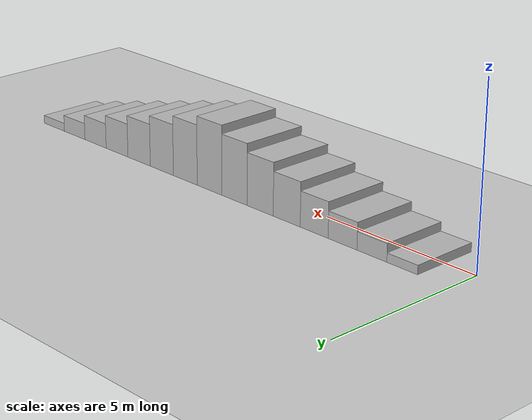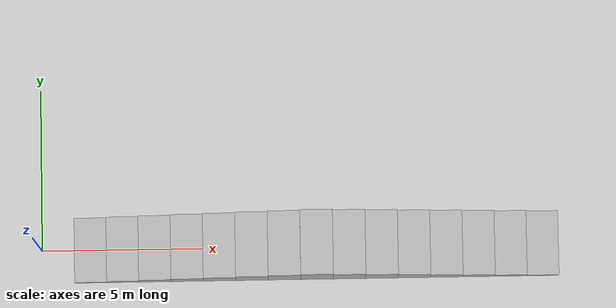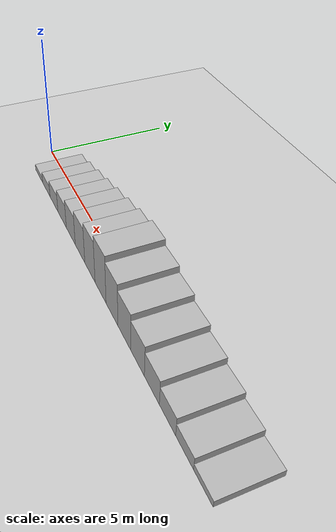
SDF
<?xml version="1.0"?>
<sdf version="1.5">
  <world name="default">
    <!--Global light source -->
    <include>
      <uri>model://sun</uri>
    </include>

    <!-- Ground plane-->
    <include>
      <uri>model://ground_plane</uri>
    </include>

  <!-- Include box 1-->
  <model name="box1">
    <pose>1.5 0 0.125 0 0 0</pose>
    <static>false</static>
    <link name="box1">
      <collision name="collision1">
        <geometry>
          <box>
            <size>1 2 0.25</size>
          </box>
        </geometry>
      </collision>
      <visual name="visual1">
        <geometry>
          <box>
            <size>1 2 0.25</size>
          </box>
        </geometry>
      </visual>
    </link>
  </model>

  <!-- Include box 2-->
  <model name="box2">
    <pose>2.5 0 0.25 0 0 0</pose>
    <static>false</static>
    <link name="box2">
      <collision name="collision2">
        <geometry>
          <box>
            <size>1 2 0.5</size>
          </box>
        </geometry>
      </collision>
      <visual name="visual2">
        <geometry>
          <box>
            <size>1 2 0.5</size>
          </box>
        </geometry>
      </visual>
    </link>
  </model>

  <!-- Include box 3-->
  <model name="box3">
    <pose>3.5 0 0.375 0 0 0</pose>
    <static>false</static>
    <link name="box3">
      <collision name="collision3">
        <geometry>
          <box>
            <size>1 2 0.75</size>
          </box>
        </geometry>
      </collision>
      <visual name="visual3">
        <geometry>
          <box>
            <size>1 2 0.75</size>
          </box>
        </geometry>
      </visual>
    </link>
  </model>

  <!-- Include box 4-->
  <model name="box4">
    <pose>4.5 0 0.5 0 0 0</pose>
    <static>false</static>
    <link name="box4">
      <collision name="collision4">
        <geometry>
          <box>
            <size>1 2 1</size>
          </box>
        </geometry>
      </collision>
      <visual name="visual4">
        <geometry>
          <box>
            <size>1 2 1</size>
          </box>
        </geometry>
      </visual>
    </link>
  </model>

  <!-- Include box 5-->
  <model name="box5">
    <pose>5.5 0 0.625 0 0 0</pose>
    <static>false</static>
    <link name="box5">
      <collision name="collision5">
        <geometry>
          <box>
            <size>1 2 1.25</size>
          </box>
        </geometry>
      </collision>
      <visual name="visual5">
        <geometry>
          <box>
            <size>1 2 1.25</size>
          </box>
        </geometry>
      </visual>
    </link>
  </model>

  <!-- Include box 6-->
  <model name="box6">
    <pose>6.5 0 0.75 0 0 0</pose>
    <static>false</static>
    <link name="box6">
      <collision name="collision6">
        <geometry>
          <box>
            <size>1 2 1.5</size>
          </box>
        </geometry>
      </collision>
      <visual name="visual6">
        <geometry>
          <box>
            <size>1 2 1.5</size>
          </box>
        </geometry>
      </visual>
    </link>
  </model>

  <!-- Include box 7-->
  <model name="box7">
    <pose>7.5 0 0.875 0 0 0</pose>
    <static>false</static>
    <link name="box7">
      <collision name="collision7">
        <geometry>
          <box>
            <size>1 2 1.75</size>
          </box>
        </geometry>
      </collision>
      <visual name="visual7">
        <geometry>
          <box>
            <size>1 2 1.75</size>
          </box>
        </geometry>
      </visual>
    </link>
  </model>

  <!-- Include box 8-->
  <model name="box8">
    <pose>8.5 0 1 0 0 0</pose>
    <static>false</static>
    <link name="box8">
      <collision name="collision8">
        <geometry>
          <box>
            <size>1 2 2</size>
          </box>
        </geometry>
      </collision>
      <visual name="visual8">
        <geometry>
          <box>
            <size>1 2 2</size>
          </box>
        </geometry>
      </visual>
    </link>
  </model>

  <!-- Include box 9-->
  <model name="box9">
    <pose>9.5 0 0.875 0 0 0</pose>
    <static>false</static>
    <link name="box9">
      <collision name="collision9">
        <geometry>
          <box>
            <size>1 2 1.75</size>
          </box>
        </geometry>
      </collision>
      <visual name="visual9">
        <geometry>
          <box>
            <size>1 2 1.75</size>
          </box>
        </geometry>
      </visual>
    </link>
  </model>

  <!-- Include box 10-->
  <model name="box10">
    <pose>10.5 0 0.75 0 0 0</pose>
    <static>false</static>
    <link name="box10">
      <collision name="collision10">
        <geometry>
          <box>
            <size>1 2 1.5</size>
          </box>
        </geometry>
      </collision>
      <visual name="visual10">
        <geometry>
          <box>
            <size>1 2 1.5</size>
          </box>
        </geometry>
      </visual>
    </link>
  </model>

  <!-- Include box 11-->
  <model name="box11">
    <pose>11.5 0 0.625 0 0 0</pose>
    <static>false</static>
    <link name="box11">
      <collision name="collision11">
        <geometry>
          <box>
            <size>1 2 1.25</size>
          </box>
        </geometry>
      </collision>
      <visual name="visual11">
        <geometry>
          <box>
            <size>1 2 1.25</size>
          </box>
        </geometry>
      </visual>
    </link>
  </model>

  <!-- Include box 12-->
  <model name="box12">
    <pose>12.5 0 0.5 0 0 0</pose>
    <static>false</static>
    <link name="box12">
      <collision name="collision12">
        <geometry>
          <box>
            <size>1 2 1</size>
          </box>
        </geometry>
      </collision>
      <visual name="visual12">
        <geometry>
          <box>
            <size>1 2 1</size>
          </box>
        </geometry>
      </visual>
    </link>
  </model>

  <!-- Include box 13-->
  <model name="box13">
    <pose>13.5 0 0.375 0 0 0</pose>
    <static>false</static>
    <link name="box13">
      <collision name="collision13">
        <geometry>
          <box>
            <size>1 2 0.75</size>
          </box>
        </geometry>
      </collision>
      <visual name="visual13">
        <geometry>
          <box>
            <size>1 2 0.75</size>
          </box>
        </geometry>
      </visual>
    </link>
  </model>

  <!-- Include box 14-->
  <model name="box14">
    <pose>14.5 0 0.25 0 0 0</pose>
    <static>false</static>
    <link name="box14">
      <collision name="collision14">
        <geometry>
          <box>
            <size>1 2 0.5</size>
          </box>
        </geometry>
      </collision>
      <visual name="visual14">
        <geometry>
          <box>
            <size>1 2 0.5</size>
          </box>
        </geometry>
      </visual>
    </link>
  </model>

  <!-- Include box 15-->
  <model name="box15">
    <pose>15.5 0 0.125 0 0 0</pose>
    <static>false</static>
    <link name="box15">
      <collision name="collision15">
        <geometry>
          <box>
            <size>1 2 0.25</size>
          </box>
        </geometry>
      </collision>
      <visual name="visual15">
        <geometry>
          <box>
            <size>1 2 0.25</size>
          </box>
        </geometry>
      </visual>
    </link>
  </model>

  </world>
</sdf>
